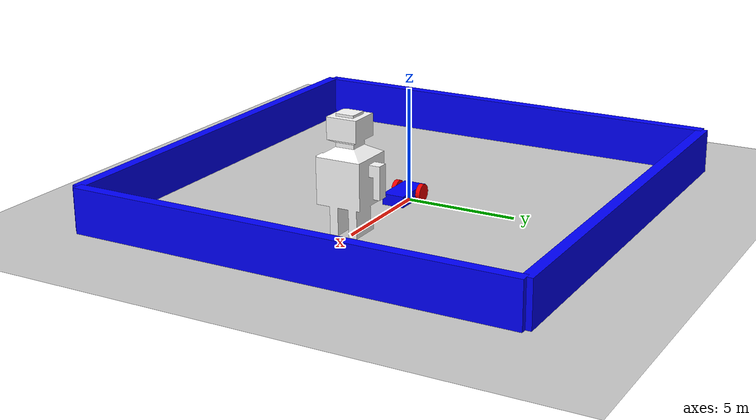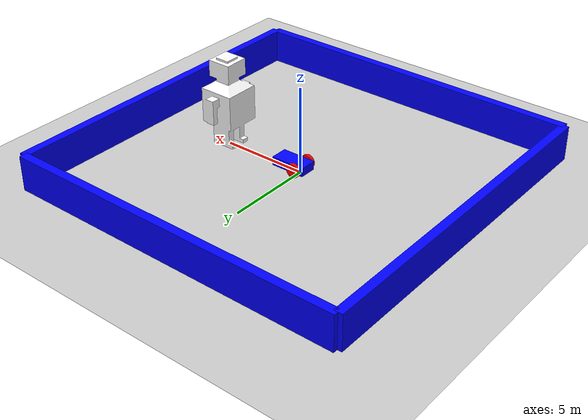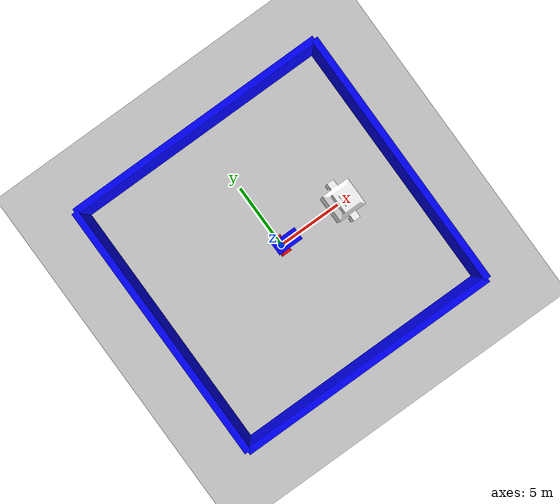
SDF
<?xml version="1.0" ?>
<sdf version="1.7">
    <world name="car_world">
        <physics name="1ms" type="ignored">
            <max_step_size>0.001</max_step_size>
            <real_time_factor>1.0</real_time_factor>
        </physics>
        <plugin
            filename="libgz-sim-physics-system.so"
            name="gz::sim::systems::Physics">
        </plugin>
        <plugin
            filename="libgz-sim-user-commands-system.so"
            name="gz::sim::systems::UserCommands">
        </plugin>
        <plugin
            filename="libgz-sim-scene-broadcaster-system.so"
            name="gz::sim::systems::SceneBroadcaster">
        </plugin>
        <plugin filename="libgz-sim-sensors-system" name="gz::sim::systems::Sensors">
            <render_engine>ogre2</render_engine>
        </plugin>
        <plugin filename="libgz-sim-particle-emitter-system" name="gz::sim::systems::ParticleEmitter">
        </plugin>
        <include>
            <uri>model://ModelSDF/model.sdf</uri>
            <pose>5 0 2.5 0 0 -1.5707</pose>
            <size>0.5 0.5 0.5</size>
            <inertial>
                    <mass>1.14395</mass>
                    <inertia>
                        <ixx>0.095329</ixx>
                        <ixy>0</ixy>
                        <ixz>0</ixz>
                        <iyy>0.381317</iyy>
                        <iyz>0</iyz>
                        <izz>0.476646</izz>
                    </inertia>
                </inertial>
        </include>

        <gui fullscreen="0">

            <!-- 3D scene -->
            <plugin filename="GzScene3D" name="3D View">
                <gz-gui>
                <title>3D View</title>
                <property type="bool" key="showTitleBar">false</property>
                <property type="string" key="state">docked</property>
                </gz-gui>

                <engine>ogre2</engine>
                <scene>scene</scene>
                <ambient_light>0.4 0.4 0.4</ambient_light>
                <background_color>0.8 0.8 0.8</background_color>
            </plugin>

            <!-- World control -->
            <plugin filename="WorldControl" name="World control">
                <gz-gui>
                <title>World control</title>
                <property type="bool" key="showTitleBar">false</property>
                <property type="bool" key="resizable">false</property>
                <property type="double" key="height">72</property>
                <property type="double" key="width">121</property>
                <property type="double" key="z">1</property>

                <property type="string" key="state">floating</property>
                <anchors target="3D View">
                    <line own="left" target="left"/>
                    <line own="bottom" target="bottom"/>
                </anchors>
                </gz-gui>

                <play_pause>true</play_pause>
                <step>true</step>
                <start_paused>true</start_paused>
                <service>/world/car_world/control</service>
                <stats_topic>/world/car_world/stats</stats_topic>
            </plugin>

            <!-- World statistics -->
            <plugin filename="WorldStats" name="World stats">
                <gz-gui>
                <title>World stats</title>
                <property type="bool" key="showTitleBar">false</property>
                <property type="bool" key="resizable">false</property>
                <property type="double" key="height">110</property>
                <property type="double" key="width">290</property>
                <property type="double" key="z">1</property>

                <property type="string" key="state">floating</property>
                <anchors target="3D View">
                    <line own="right" target="right"/>
                    <line own="bottom" target="bottom"/>
                </anchors>
                </gz-gui>

                <sim_time>true</sim_time>
                <real_time>true</real_time>
                <real_time_factor>true</real_time_factor>
                <iterations>true</iterations>
                <topic>/world/car_world/stats</topic>

            </plugin>

            <!-- Entity tree -->
            <plugin filename="EntityTree" name="Entity tree">
            </plugin>

            <plugin filename="VisualizeLidar" name="VisualizeLidar">
            </plugin>

        </gui>

        <light type="directional" name="sun">
            <cast_shadows>true</cast_shadows>
            <pose>0 0 10 0 0 0</pose>
            <diffuse>0.8 0.8 0.8 1</diffuse>
            <specular>0.2 0.2 0.2 1</specular>
            <attenuation>
                <range>1000</range>
                <constant>0.9</constant>
                <linear>0.01</linear>
                <quadratic>0.001</quadratic>
            </attenuation>
            <direction>-0.5 0.1 -0.9</direction>
        </light>

        <model name="fog_generator">
            <pose>0 0 0 0 -1.5707 0</pose>
            <static>true</static>
            <link name="fog_link">
                <particle_emitter name="emitter" type="box">
                    <emitting>true</emitting>
                    <size>20 20 0</size>
                    <particle_size>1 1 1</particle_size>
                    <lifetime>25</lifetime>
                    <min_velocity>0.1</min_velocity>
                    <max_velocity>0.2</max_velocity>
                    <scale_rate>0.5</scale_rate>
                    <rate>5</rate>
                    <material>
                        <diffuse>0.7 0.7 0.7</diffuse>
                        <specular>1.0 1.0 1.0</specular>
                        <pbr>
                        <metal>
                            <albedo_map>materials/textures/fog.png</albedo_map>
                        </metal>
                        </pbr>
                    </material>
                    <color_range_image>materials/textures/fogcolors.png</color_range_image>
                </particle_emitter>
            </link>
        </model>

        <model name="ground_plane">
            <static>true</static>
            <link name="link">
                <collision name="collision">
                <geometry>
                    <plane>
                    <normal>0 0 1</normal>
                    </plane>
                </geometry>
                </collision>
                <visual name="visual">
                <geometry>
                    <plane>
                    <normal>0 0 1</normal>
                    <size>100 100</size>
                    </plane>
                </geometry>
                <material>
                    <ambient>0.8 0.8 0.8 1</ambient>
                    <diffuse>0.8 0.8 0.8 1</diffuse>
                    <specular>0.8 0.8 0.8 1</specular>
                </material>
                </visual>
            </link>
        </model>

        <model name='vehicle_blue' canonical_link='chassis'>
            <pose relative_to='world'>0 0 0 0 0 0</pose>

            <frame name="lidar_frame" attached_to="chassis">
                <pose>0.8 0 0.5 0 0 0</pose>
            </frame>

            <link name='chassis'>
                <pose relative_to='__model__'>0.5 0 0.4 0 0 0</pose>
                <inertial> <!--inertial properties of the link mass, inertia matix-->
                    <mass>1.14395</mass>
                    <inertia>
                        <ixx>0.095329</ixx>
                        <ixy>0</ixy>
                        <ixz>0</ixz>
                        <iyy>0.381317</iyy>
                        <iyz>0</iyz>
                        <izz>0.476646</izz>
                    </inertia>
                </inertial>
                <visual name='visual'>
                    <geometry>
                        <box>
                            <size>2.0 1.0 0.5</size>
                        </box>
                    </geometry>
                    <!--let's add color to our link-->
                    <material>
                        <ambient>0.0 0.0 1.0 1</ambient>
                        <diffuse>0.0 0.0 1.0 1</diffuse>
                        <specular>0.0 0.0 1.0 1</specular>
                    </material>
                </visual>
                <collision name='collision'>
                    <geometry>
                        <box>
                            <size>2.0 1.0 0.5</size>
                        </box>
                    </geometry>
                </collision>

                <sensor name='gpu_lidar' type='gpu_lidar'>"
                    <pose relative_to='lidar_frame'>0 0 0 0 0 0</pose>
                    <topic>lidar</topic>
                    <update_rate>10</update_rate>
                    <ray>
                        <scan>
                            <horizontal>
                                <samples>640</samples>
                                <resolution>1</resolution>
                                <min_angle>-1.396263</min_angle>
                                <max_angle>1.396263</max_angle>
                            </horizontal>
                            <vertical>
                                <samples>64</samples>
                                <resolution>1</resolution>
                                <min_angle>-0.261799</min_angle>
                                <max_angle>0.3</max_angle>
                            </vertical>
                        </scan>
                        <range>
                            <min>0.08</min>
                            <max>10.0</max>
                            <resolution>0.01</resolution>
                        </range>
                    </ray>
                    <always_on>1</always_on>
                    <visualize>true</visualize>
                </sensor>

                <sensor name="camera" type="camera">
                    <pose relative_to='lidar_frame'>0 0 0 0 0 0</pose>
                    <topic>cam</topic>
                    <camera>
                        <horizontal_fov>1.047</horizontal_fov>
                        <image>
                        <width>800</width>
                        <height>600</height>
                        </image>
                        <clip>
                        <near>0.1</near>
                        <far>10</far>
                        </clip>
                    </camera>
                    <always_on>1</always_on>
                    <update_rate>30</update_rate>
                    <visualize>true</visualize>
                </sensor>
            </link>

            <link name='left_wheel'>
                <pose relative_to="chassis">-0.5 0.6 0 -1.5707 0 0</pose>
                <inertial>
                    <mass>1</mass>
                    <inertia>
                        <ixx>0.043333</ixx>
                        <ixy>0</ixy>
                        <ixz>0</ixz>
                        <iyy>0.043333</iyy>
                        <iyz>0</iyz>
                        <izz>0.08</izz>
                    </inertia>
                </inertial>
                <visual name='visual'>
                    <geometry>
                        <cylinder>
                            <radius>0.4</radius>
                            <length>0.2</length>
                        </cylinder>
                    </geometry>
                    <material>
                        <ambient>1.0 0.0 0.0 1</ambient>
                        <diffuse>1.0 0.0 0.0 1</diffuse>
                        <specular>1.0 0.0 0.0 1</specular>
                    </material>
                </visual>
                <collision name='collision'>
                    <geometry>
                        <cylinder>
                            <radius>0.4</radius>
                            <length>0.2</length>
                        </cylinder>
                    </geometry>
                </collision>
            </link>

            <link name='right_wheel'>
                <pose relative_to="chassis">-0.5 -0.6 0 -1.5707 0 0</pose> <!--angles are in radian-->
                <inertial>
                    <mass>1</mass>
                    <inertia>
                        <ixx>0.043333</ixx>
                        <ixy>0</ixy>
                        <ixz>0</ixz>
                        <iyy>0.043333</iyy>
                        <iyz>0</iyz>
                        <izz>0.08</izz>
                    </inertia>
                </inertial>
                <visual name='visual'>
                    <geometry>
                        <cylinder>
                            <radius>0.4</radius>
                            <length>0.2</length>
                        </cylinder>
                    </geometry>
                    <material>
                        <ambient>1.0 0.0 0.0 1</ambient>
                        <diffuse>1.0 0.0 0.0 1</diffuse>
                        <specular>1.0 0.0 0.0 1</specular>
                    </material>
                </visual>
                <collision name='collision'>
                    <geometry>
                        <cylinder>
                            <radius>0.4</radius>
                            <length>0.2</length>
                        </cylinder>
                    </geometry>
                </collision>
            </link>

            <frame name="caster_frame" attached_to='chassis'>
                <pose>0.8 0 -0.2 0 0 0</pose>
            </frame>

            <link name='caster'>
                <pose relative_to='caster_frame'/>
                <inertial>
                    <mass>1</mass>
                    <inertia>
                        <ixx>0.016</ixx>
                        <ixy>0</ixy>
                        <ixz>0</ixz>
                        <iyy>0.016</iyy>
                        <iyz>0</iyz>
                        <izz>0.016</izz>
                    </inertia>
                </inertial>
                <visual name='visual'>
                    <geometry>
                        <sphere>
                            <radius>0.2</radius>
                        </sphere>
                    </geometry>
                    <material>
                        <ambient>0.0 1.0 0.0 1</ambient>
                        <diffuse>0.0 1.0 0.0 1</diffuse>
                        <specular>0.0 1.0 0.0 1</specular>
                    </material>
                </visual>
                <collision name='collision'>
                    <geometry>
                        <sphere>
                            <radius>0.2</radius>
                        </sphere>
                    </geometry>
                </collision>
            </link>

            <joint name='left_wheel_joint' type='revolute'>
                <pose relative_to='left_wheel'/>
                <parent>chassis</parent>
                <child>left_wheel</child>
                <axis>
                    <xyz expressed_in='__model__'>0 1 0</xyz> <!--can be defined as any frame or even arbitrary frames-->
                    <limit>
                        <lower>-1.79769e+308</lower>    <!--negative infinity-->
                        <upper>1.79769e+308</upper>     <!--positive infinity-->
                    </limit>
                </axis>
            </joint>

            <joint name='right_wheel_joint' type='revolute'>
                <pose relative_to='right_wheel'/>
                <parent>chassis</parent>
                <child>right_wheel</child>
                <axis>
                    <xyz expressed_in='__model__'>0 1 0</xyz>
                    <limit>
                        <lower>-1.79769e+308</lower>    <!--negative infinity-->
                        <upper>1.79769e+308</upper>     <!--positive infinity-->
                    </limit>
                </axis>
            </joint>

            <joint name='caster_wheel' type='ball'>
                <parent>chassis</parent>
                <child>caster</child>
            </joint>

            <plugin
                filename="gz-sim-diff-drive-system"
                name="gz::sim::systems::DiffDrive">
                <left_joint>left_wheel_joint</left_joint>
                <right_joint>right_wheel_joint</right_joint>
                <wheel_separation>1.2</wheel_separation>
                <wheel_radius>0.4</wheel_radius>
                <odom_publish_frequency>1</odom_publish_frequency>
                <topic>cmd_vel</topic>
            </plugin>
        </model>

        <model name='room'>
            <static>true</static>
            <pose relative_to='world'>0 0 1 0 0 0</pose>
            <link name='boxf'>
                <pose relative_to='__model__'>10 0 0 0 0 0</pose>
                <visual name='visual'>
                    <geometry>
                        <box>
                            <size>0.5 20.0 2.0</size>
                        </box>
                    </geometry>
                    <!--let's add color to our link-->
                    <material>
                        <ambient>0.0 0.0 1.0 1</ambient>
                        <diffuse>0.0 0.0 1.0 1</diffuse>
                        <specular>0.0 0.0 1.0 1</specular>
                    </material>
                </visual>
                <collision name='collision'>
                    <geometry>
                        <box>
                            <size>0.5 20.0 2.0</size>
                        </box>
                    </geometry>
                </collision>
            </link>
            <link name='boxb'>
                <pose relative_to='__model__'>-10 0 0 0 0 0</pose>
                <visual name='visual'>
                    <geometry>
                        <box>
                            <size>0.5 20.0 2.0</size>
                        </box>
                    </geometry>
                    <!--let's add color to our link-->
                    <material>
                        <ambient>0.0 0.0 1.0 1</ambient>
                        <diffuse>0.0 0.0 1.0 1</diffuse>
                        <specular>0.0 0.0 1.0 1</specular>
                    </material>
                </visual>
                <collision name='collision'>
                    <geometry>
                        <box>
                            <size>0.5 20.0 2.0</size>
                        </box>
                    </geometry>
                </collision>
            </link>
            <link name='boxr'>
                <pose relative_to='__model__'>0 -10 0 0 0 1.5707</pose>
                <visual name='visual'>
                    <geometry>
                        <box>
                            <size>0.5 20.0 2.0</size>
                        </box>
                    </geometry>
                    <!--let's add color to our link-->
                    <material>
                        <ambient>0.0 0.0 1.0 1</ambient>
                        <diffuse>0.0 0.0 1.0 1</diffuse>
                        <specular>0.0 0.0 1.0 1</specular>
                    </material>
                </visual>
                <collision name='collision'>
                    <geometry>
                        <box>
                            <size>0.5 20.0 2.0</size>
                        </box>
                    </geometry>
                </collision>
            </link>
            <link name='boxl'>
                <pose relative_to='__model__'>0 10 0 0 0 1.5707</pose>
                <visual name='visual'>
                    <geometry>
                        <box>
                            <size>0.5 20.0 2.0</size>
                        </box>
                    </geometry>
                    <!--let's add color to our link-->
                    <material>
                        <ambient>0.0 0.0 1.0 1</ambient>
                        <diffuse>0.0 0.0 1.0 1</diffuse>
                        <specular>0.0 0.0 1.0 1</specular>
                    </material>
                </visual>
                <collision name='collision'>
                    <geometry>
                        <box>
                            <size>0.5 20.0 2.0</size>
                        </box>
                    </geometry>
                </collision>
            </link>

        </model>

    </world>
</sdf>

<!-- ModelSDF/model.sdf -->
<sdf version="1.7">
  <model name="test">
    <link name="testlink">
      <visual name="Cube">
        <geometry>
          <mesh>
            <uri>model.dae</uri>
            <submesh>
              <name>Cube</name>
            </submesh>
          </mesh>
        </geometry>
        <material>
          <diffuse>1.0 1.0 1.0 1.0</diffuse>
          <specular>0.0 0.0 0.0 1.0</specular>
          <pbr>
            <metal/>
          </pbr>
        </material>
      </visual>
      <collision name="collision">
        <geometry>
          <mesh>
            <uri>model.dae</uri>
          </mesh>
        </geometry>
        <surface/>
        <contact/>
        <collide_bitmask>0x01</collide_bitmask>
      </collision>
    </link>
  </model>
  <static>true</static>
</sdf>
